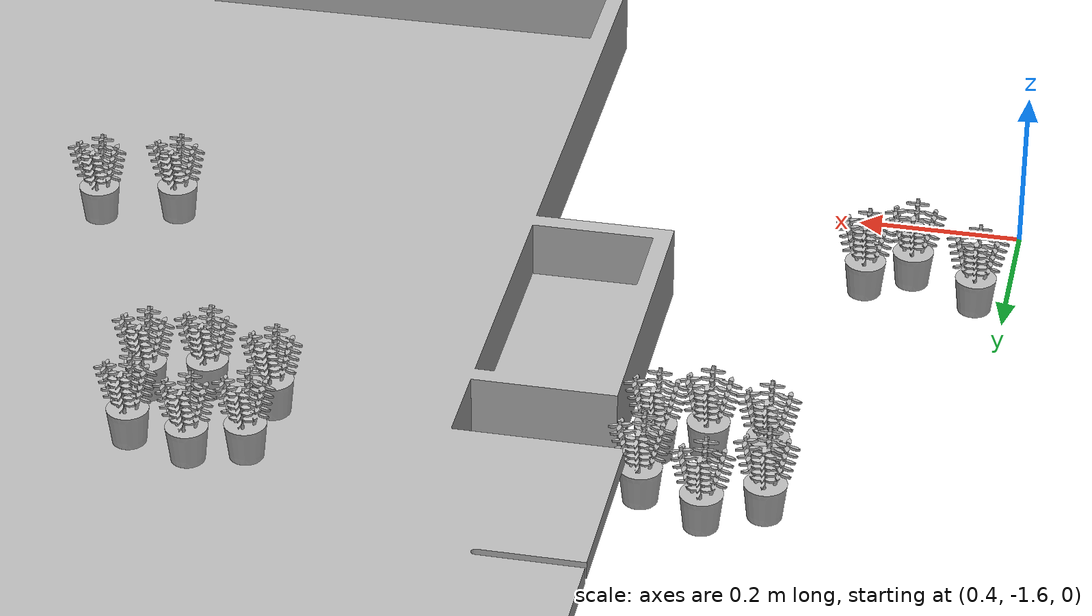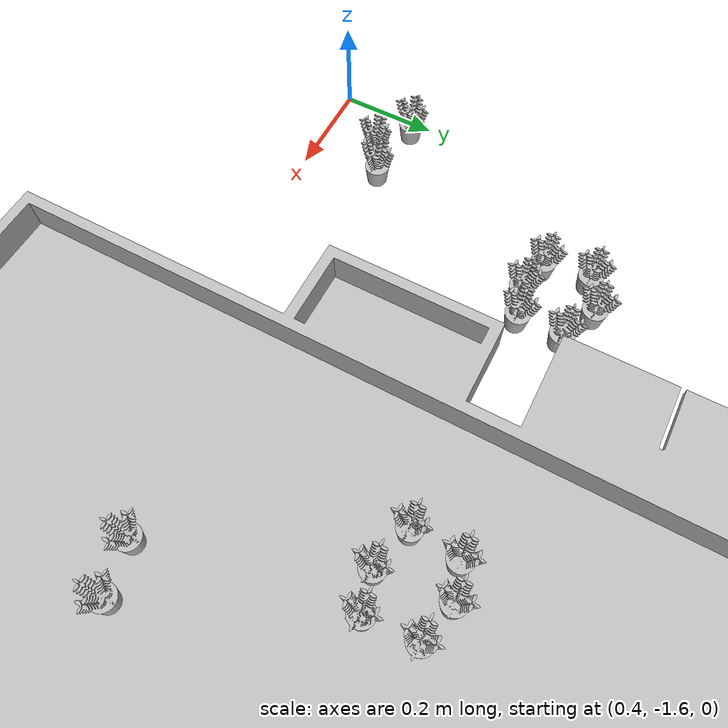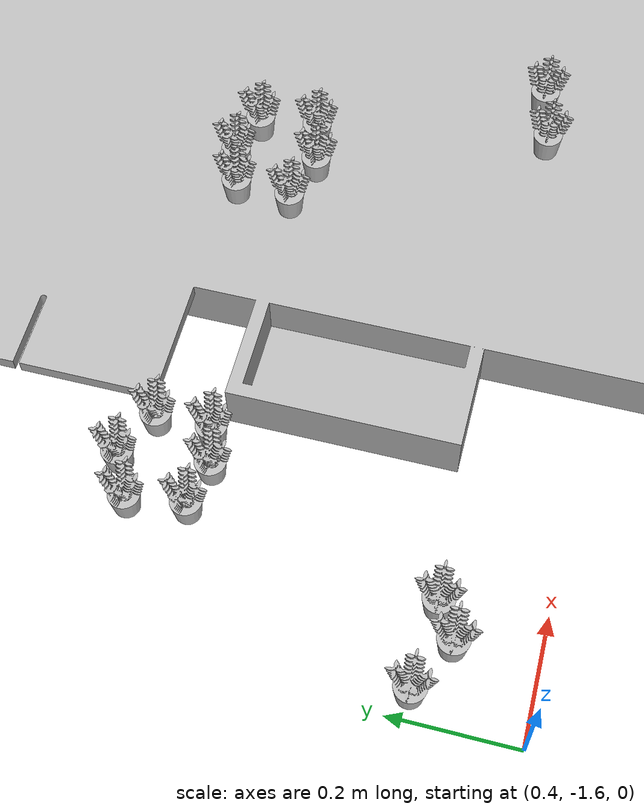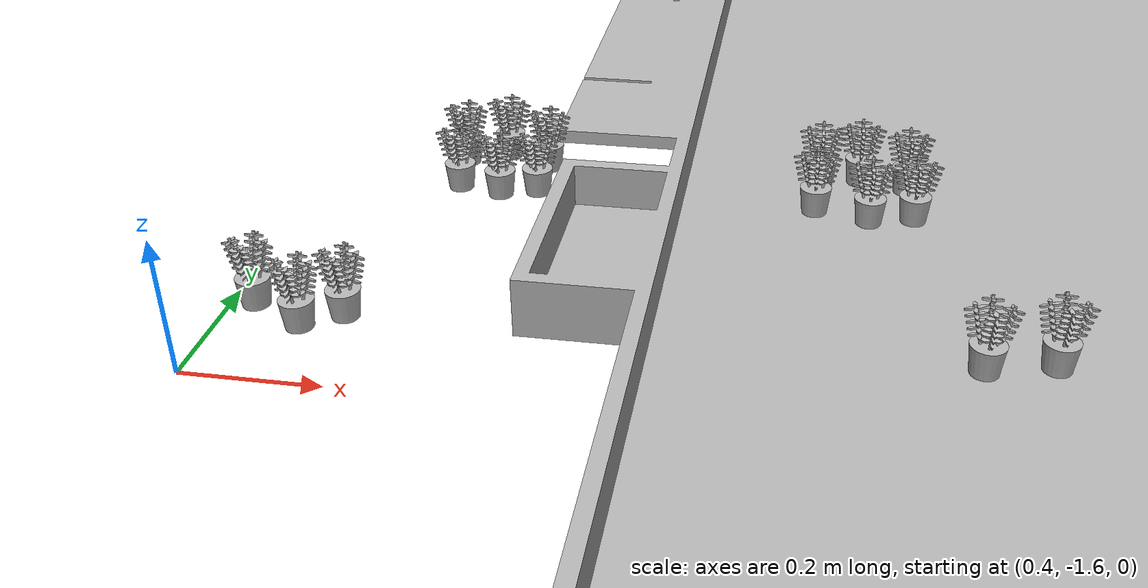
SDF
<sdf version="1.10">
 <world name="default">
  <model name="Table_2024">
   <static>true</static>
   <link name="link_0">
    <gravity>false</gravity>
    <inertial>
     <inertia>
      <ixx>0.16666700000000001</ixx>
      <ixy>0</ixy>
      <ixz>0</ixz>
      <iyy>0.16666700000000001</iyy>
      <iyz>0</iyz>
      <izz>0.16666700000000001</izz>
     </inertia>
     <mass>1</mass>
    </inertial>
    <visual name="visual">
     <geometry><mesh><uri>model://Table2024/table2024.dae</uri><scale>1 1 1</scale></mesh></geometry>
    </visual>
    <collision name="collision">
     <geometry><mesh><uri>model://Table2024/table2024.dae</uri><scale>1 1 1</scale></mesh></geometry>
     <surface>
      <friction>
       <ode><mu>1</mu><mu2>1</mu2><fdir1>0 0 0</fdir1><slip1>0</slip1><slip2>0</slip2></ode>
       <torsional>
        <coefficient>1</coefficient>
        <patch_radius>0</patch_radius>
        <surface_radius>0</surface_radius>
        <use_patch_radius>true</use_patch_radius>
        <ode><slip>0</slip></ode>
       </torsional>
      </friction>
      <contact>
       <collide_without_contact>false</collide_without_contact>
       <collide_without_contact_bitmask>1</collide_without_contact_bitmask>
       <collide_bitmask>1</collide_bitmask>
       <ode>
        <soft_cfm>0</soft_cfm>
        <soft_erp>0.20000000000000001</soft_erp>
        <kp>10000000000000</kp>
        <kd>1</kd>
        <max_vel>0.01</max_vel>
        <min_depth>0.001</min_depth>
       </ode>
       <bullet>
        <split_impulse>true</split_impulse>
        <split_impulse_penetration_threshold>-0.01</split_impulse_penetration_threshold>
        <soft_cfm>0</soft_cfm>
        <soft_erp>0.20000000000000001</soft_erp>
        <kp>10000000000000</kp>
        <kd>1</kd>
       </bullet>
      </contact>
     </surface>
    </collision>
   </link>
   <static>false</static>
   <pose>1 1 0 0 0 0</pose>
   <plugin filename="gz-sim-label-system" name="gz::sim::systems::Label"><label>9</label></plugin>
  </model>
  <model name="Plant_white">
   <static>false</static>
   <link name="link_0">
    <inertial>
     <pose>0 0 0.02 0 0 0</pose>
     <mass>0.025000000000000001</mass>
     <inertia>
      <ixx>2.5000000000000001e-05</ixx>
      <ixy>0</ixy>
      <ixz>0</ixz>
      <iyy>2.5000000000000001e-05</iyy>
      <iyz>0</iyz>
      <izz>7.9999999999999996e-06</izz>
     </inertia>
    </inertial>
    <visual name="visual">
     <geometry><mesh><uri>model://Plants/plant_white.dae</uri><scale>0.001 0.001 0.001</scale></mesh></geometry>
    </visual>
    <collision name="collision">
     <max_contacts>3</max_contacts>
     <pose>0 0 0.050000000000000003 0 0 0</pose>
     <geometry>
      <cylinder><radius>0.025000000000000001</radius><length>0.10000000000000001</length></cylinder>
     </geometry>
     <surface>
      <friction>
       <ode><mu>0.90000000000000002</mu><mu2>0.90000000000000002</mu2></ode>
       <torsional>
        <coefficient>1</coefficient>
        <patch_radius>0</patch_radius>
        <surface_radius>0</surface_radius>
        <use_patch_radius>true</use_patch_radius>
        <ode><slip>0</slip></ode>
       </torsional>
      </friction>
      <contact>
       <ode>
        <soft_cfm>0</soft_cfm>
        <soft_erp>0.20000000000000001</soft_erp>
        <kp>10</kp>
        <kd>1000000000</kd>
        <max_vel>0</max_vel>
        <min_depth>0.01</min_depth>
       </ode>
      </contact>
     </surface>
    </collision>
   </link>
   <pose>1.360179456462201 -0.9506477666523182 0 0 0 0</pose>
   <plugin filename="gz-sim-label-system" name="gz::sim::systems::Label"><label>6</label></plugin>
  </model>
  <model name="Plant_white_0">
   <static>false</static>
   <link name="link_0">
    <inertial>
     <pose>0 0 0.02 0 0 0</pose>
     <mass>0.025000000000000001</mass>
     <inertia>
      <ixx>2.5000000000000001e-05</ixx>
      <ixy>0</ixy>
      <ixz>0</ixz>
      <iyy>2.5000000000000001e-05</iyy>
      <iyz>0</iyz>
      <izz>7.9999999999999996e-06</izz>
     </inertia>
    </inertial>
    <visual name="visual">
     <geometry><mesh><uri>model://Plants/plant_white.dae</uri><scale>0.001 0.001 0.001</scale></mesh></geometry>
    </visual>
    <collision name="collision">
     <max_contacts>3</max_contacts>
     <pose>0 0 0.050000000000000003 0 0 0</pose>
     <geometry>
      <cylinder><radius>0.025000000000000001</radius><length>0.10000000000000001</length></cylinder>
     </geometry>
     <surface>
      <friction>
       <ode><mu>0.90000000000000002</mu><mu2>0.90000000000000002</mu2></ode>
       <torsional>
        <coefficient>1</coefficient>
        <patch_radius>0</patch_radius>
        <surface_radius>0</surface_radius>
        <use_patch_radius>true</use_patch_radius>
        <ode><slip>0</slip></ode>
       </torsional>
      </friction>
      <contact>
       <ode>
        <soft_cfm>0</soft_cfm>
        <soft_erp>0.20000000000000001</soft_erp>
        <kp>10</kp>
        <kd>1000000000</kd>
        <max_vel>0</max_vel>
        <min_depth>0.01</min_depth>
       </ode>
      </contact>
     </surface>
    </collision>
   </link>
   <pose>1.2836622102966466 -0.92864303198521259 0 0 0 0</pose>
   <plugin filename="gz-sim-label-system" name="gz::sim::systems::Label"><label>6</label></plugin>
  </model>
  <model name="Plant_white_1">
   <static>false</static>
   <link name="link_0">
    <inertial>
     <pose>0 0 0.02 0 0 0</pose>
     <mass>0.025000000000000001</mass>
     <inertia>
      <ixx>2.5000000000000001e-05</ixx>
      <ixy>0</ixy>
      <ixz>0</ixz>
      <iyy>2.5000000000000001e-05</iyy>
      <iyz>0</iyz>
      <izz>7.9999999999999996e-06</izz>
     </inertia>
    </inertial>
    <visual name="visual">
     <geometry><mesh><uri>model://Plants/plant_white.dae</uri><scale>0.001 0.001 0.001</scale></mesh></geometry>
    </visual>
    <collision name="collision">
     <max_contacts>3</max_contacts>
     <pose>0 0 0.050000000000000003 0 0 0</pose>
     <geometry>
      <cylinder><radius>0.025000000000000001</radius><length>0.10000000000000001</length></cylinder>
     </geometry>
     <surface>
      <friction>
       <ode><mu>0.90000000000000002</mu><mu2>0.90000000000000002</mu2></ode>
       <torsional>
        <coefficient>1</coefficient>
        <patch_radius>0</patch_radius>
        <surface_radius>0</surface_radius>
        <use_patch_radius>true</use_patch_radius>
        <ode><slip>0</slip></ode>
       </torsional>
      </friction>
      <contact>
       <ode>
        <soft_cfm>0</soft_cfm>
        <soft_erp>0.20000000000000001</soft_erp>
        <kp>10</kp>
        <kd>1000000000</kd>
        <max_vel>0</max_vel>
        <min_depth>0.01</min_depth>
       </ode>
      </contact>
     </surface>
    </collision>
   </link>
   <pose>1.2193133264073377 -0.9479548182897416 0 0 0 0</pose>
   <plugin filename="gz-sim-label-system" name="gz::sim::systems::Label"><label>6</label></plugin>
  </model>
  <model name="Plant_white_2">
   <static>false</static>
   <link name="link_0">
    <inertial>
     <pose>0 0 0.02 0 0 0</pose>
     <mass>0.025000000000000001</mass>
     <inertia>
      <ixx>2.5000000000000001e-05</ixx>
      <ixy>0</ixy>
      <ixz>0</ixz>
      <iyy>2.5000000000000001e-05</iyy>
      <iyz>0</iyz>
      <izz>7.9999999999999996e-06</izz>
     </inertia>
    </inertial>
    <visual name="visual">
     <geometry><mesh><uri>model://Plants/plant_white.dae</uri><scale>0.001 0.001 0.001</scale></mesh></geometry>
    </visual>
    <collision name="collision">
     <max_contacts>3</max_contacts>
     <pose>0 0 0.050000000000000003 0 0 0</pose>
     <geometry>
      <cylinder><radius>0.025000000000000001</radius><length>0.10000000000000001</length></cylinder>
     </geometry>
     <surface>
      <friction>
       <ode><mu>0.90000000000000002</mu><mu2>0.90000000000000002</mu2></ode>
       <torsional>
        <coefficient>1</coefficient>
        <patch_radius>0</patch_radius>
        <surface_radius>0</surface_radius>
        <use_patch_radius>true</use_patch_radius>
        <ode><slip>0</slip></ode>
       </torsional>
      </friction>
      <contact>
       <ode>
        <soft_cfm>0</soft_cfm>
        <soft_erp>0.20000000000000001</soft_erp>
        <kp>10</kp>
        <kd>1000000000</kd>
        <max_vel>0</max_vel>
        <min_depth>0.01</min_depth>
       </ode>
      </contact>
     </surface>
    </collision>
   </link>
   <pose>1.3677955824821897 -1.0497429587157769 0 0 0 0</pose>
   <plugin filename="gz-sim-label-system" name="gz::sim::systems::Label"><label>6</label></plugin>
  </model>
  <model name="Plant_white_3">
   <static>false</static>
   <link name="link_0">
    <inertial>
     <pose>0 0 0.02 0 0 0</pose>
     <mass>0.025000000000000001</mass>
     <inertia>
      <ixx>2.5000000000000001e-05</ixx>
      <ixy>0</ixy>
      <ixz>0</ixz>
      <iyy>2.5000000000000001e-05</iyy>
      <iyz>0</iyz>
      <izz>7.9999999999999996e-06</izz>
     </inertia>
    </inertial>
    <visual name="visual">
     <geometry><mesh><uri>model://Plants/plant_white.dae</uri><scale>0.001 0.001 0.001</scale></mesh></geometry>
    </visual>
    <collision name="collision">
     <max_contacts>3</max_contacts>
     <pose>0 0 0.050000000000000003 0 0 0</pose>
     <geometry>
      <cylinder><radius>0.025000000000000001</radius><length>0.10000000000000001</length></cylinder>
     </geometry>
     <surface>
      <friction>
       <ode><mu>0.90000000000000002</mu><mu2>0.90000000000000002</mu2></ode>
       <torsional>
        <coefficient>1</coefficient>
        <patch_radius>0</patch_radius>
        <surface_radius>0</surface_radius>
        <use_patch_radius>true</use_patch_radius>
        <ode><slip>0</slip></ode>
       </torsional>
      </friction>
      <contact>
       <ode>
        <soft_cfm>0</soft_cfm>
        <soft_erp>0.20000000000000001</soft_erp>
        <kp>10</kp>
        <kd>1000000000</kd>
        <max_vel>0</max_vel>
        <min_depth>0.01</min_depth>
       </ode>
      </contact>
     </surface>
    </collision>
   </link>
   <pose>1.2975663575258229 -1.0668057484984725 0 0 0 0</pose>
   <plugin filename="gz-sim-label-system" name="gz::sim::systems::Label"><label>6</label></plugin>
  </model>
  <model name="Plant_white_4">
   <static>false</static>
   <link name="link_0">
    <inertial>
     <pose>0 0 0.02 0 0 0</pose>
     <mass>0.025000000000000001</mass>
     <inertia>
      <ixx>2.5000000000000001e-05</ixx>
      <ixy>0</ixy>
      <ixz>0</ixz>
      <iyy>2.5000000000000001e-05</iyy>
      <iyz>0</iyz>
      <izz>7.9999999999999996e-06</izz>
     </inertia>
    </inertial>
    <visual name="visual">
     <geometry><mesh><uri>model://Plants/plant_white.dae</uri><scale>0.001 0.001 0.001</scale></mesh></geometry>
    </visual>
    <collision name="collision">
     <max_contacts>3</max_contacts>
     <pose>0 0 0.050000000000000003 0 0 0</pose>
     <geometry>
      <cylinder><radius>0.025000000000000001</radius><length>0.10000000000000001</length></cylinder>
     </geometry>
     <surface>
      <friction>
       <ode><mu>0.90000000000000002</mu><mu2>0.90000000000000002</mu2></ode>
       <torsional>
        <coefficient>1</coefficient>
        <patch_radius>0</patch_radius>
        <surface_radius>0</surface_radius>
        <use_patch_radius>true</use_patch_radius>
        <ode><slip>0</slip></ode>
       </torsional>
      </friction>
      <contact>
       <ode>
        <soft_cfm>0</soft_cfm>
        <soft_erp>0.20000000000000001</soft_erp>
        <kp>10</kp>
        <kd>1000000000</kd>
        <max_vel>0</max_vel>
        <min_depth>0.01</min_depth>
       </ode>
      </contact>
     </surface>
    </collision>
   </link>
   <pose>1.21215457357818 -1.0426224273530589 0 0 0 0</pose>
   <plugin filename="gz-sim-label-system" name="gz::sim::systems::Label"><label>6</label></plugin>
  </model>
  <model name="Plant_white_5">
   <static>false</static>
   <link name="link_0">
    <inertial>
     <pose>0 0 0.02 0 0 0</pose>
     <mass>0.025000000000000001</mass>
     <inertia>
      <ixx>2.5000000000000001e-05</ixx>
      <ixy>0</ixy>
      <ixz>0</ixz>
      <iyy>2.5000000000000001e-05</iyy>
      <iyz>0</iyz>
      <izz>7.9999999999999996e-06</izz>
     </inertia>
    </inertial>
    <visual name="visual">
     <geometry><mesh><uri>model://Plants/plant_white.dae</uri><scale>0.001 0.001 0.001</scale></mesh></geometry>
    </visual>
    <collision name="collision">
     <max_contacts>3</max_contacts>
     <pose>0 0 0.050000000000000003 0 0 0</pose>
     <geometry>
      <cylinder><radius>0.025000000000000001</radius><length>0.10000000000000001</length></cylinder>
     </geometry>
     <surface>
      <friction>
       <ode><mu>0.90000000000000002</mu><mu2>0.90000000000000002</mu2></ode>
       <torsional>
        <coefficient>1</coefficient>
        <patch_radius>0</patch_radius>
        <surface_radius>0</surface_radius>
        <use_patch_radius>true</use_patch_radius>
        <ode><slip>0</slip></ode>
       </torsional>
      </friction>
      <contact>
       <ode>
        <soft_cfm>0</soft_cfm>
        <soft_erp>0.20000000000000001</soft_erp>
        <kp>10</kp>
        <kd>1000000000</kd>
        <max_vel>0</max_vel>
        <min_depth>0.01</min_depth>
       </ode>
      </contact>
     </surface>
    </collision>
   </link>
   <pose>0.76038765305396971 -0.95397081075234624 0 0 0 0</pose>
   <plugin filename="gz-sim-label-system" name="gz::sim::systems::Label"><label>6</label></plugin>
  </model>
  <model name="Plant_white_6">
   <static>false</static>
   <link name="link_0">
    <inertial>
     <pose>0 0 0.02 0 0 0</pose>
     <mass>0.025000000000000001</mass>
     <inertia>
      <ixx>2.5000000000000001e-05</ixx>
      <ixy>0</ixy>
      <ixz>0</ixz>
      <iyy>2.5000000000000001e-05</iyy>
      <iyz>0</iyz>
      <izz>7.9999999999999996e-06</izz>
     </inertia>
    </inertial>
    <visual name="visual">
     <geometry><mesh><uri>model://Plants/plant_white.dae</uri><scale>0.001 0.001 0.001</scale></mesh></geometry>
    </visual>
    <collision name="collision">
     <max_contacts>3</max_contacts>
     <pose>0 0 0.050000000000000003 0 0 0</pose>
     <geometry>
      <cylinder><radius>0.025000000000000001</radius><length>0.10000000000000001</length></cylinder>
     </geometry>
     <surface>
      <friction>
       <ode><mu>0.90000000000000002</mu><mu2>0.90000000000000002</mu2></ode>
       <torsional>
        <coefficient>1</coefficient>
        <patch_radius>0</patch_radius>
        <surface_radius>0</surface_radius>
        <use_patch_radius>true</use_patch_radius>
        <ode><slip>0</slip></ode>
       </torsional>
      </friction>
      <contact>
       <ode>
        <soft_cfm>0</soft_cfm>
        <soft_erp>0.20000000000000001</soft_erp>
        <kp>10</kp>
        <kd>1000000000</kd>
        <max_vel>0</max_vel>
        <min_depth>0.01</min_depth>
       </ode>
      </contact>
     </surface>
    </collision>
   </link>
   <pose>0.68443245151425547 -0.9175018419367601 0 0 0 0</pose>
   <plugin filename="gz-sim-label-system" name="gz::sim::systems::Label"><label>6</label></plugin>
  </model>
  <model name="Plant_white_7">
   <static>false</static>
   <link name="link_0">
    <inertial>
     <pose>0 0 0.02 0 0 0</pose>
     <mass>0.025000000000000001</mass>
     <inertia>
      <ixx>2.5000000000000001e-05</ixx>
      <ixy>0</ixy>
      <ixz>0</ixz>
      <iyy>2.5000000000000001e-05</iyy>
      <iyz>0</iyz>
      <izz>7.9999999999999996e-06</izz>
     </inertia>
    </inertial>
    <visual name="visual">
     <geometry><mesh><uri>model://Plants/plant_white.dae</uri><scale>0.001 0.001 0.001</scale></mesh></geometry>
    </visual>
    <collision name="collision">
     <max_contacts>3</max_contacts>
     <pose>0 0 0.050000000000000003 0 0 0</pose>
     <geometry>
      <cylinder><radius>0.025000000000000001</radius><length>0.10000000000000001</length></cylinder>
     </geometry>
     <surface>
      <friction>
       <ode><mu>0.90000000000000002</mu><mu2>0.90000000000000002</mu2></ode>
       <torsional>
        <coefficient>1</coefficient>
        <patch_radius>0</patch_radius>
        <surface_radius>0</surface_radius>
        <use_patch_radius>true</use_patch_radius>
        <ode><slip>0</slip></ode>
       </torsional>
      </friction>
      <contact>
       <ode>
        <soft_cfm>0</soft_cfm>
        <soft_erp>0.20000000000000001</soft_erp>
        <kp>10</kp>
        <kd>1000000000</kd>
        <max_vel>0</max_vel>
        <min_depth>0.01</min_depth>
       </ode>
      </contact>
     </surface>
    </collision>
   </link>
   <pose>0.61749618409635343 -0.95085208252025 0 0 0 0</pose>
   <plugin filename="gz-sim-label-system" name="gz::sim::systems::Label"><label>6</label></plugin>
  </model>
  <model name="Plant_white_8">
   <static>false</static>
   <link name="link_0">
    <inertial>
     <pose>0 0 0.02 0 0 0</pose>
     <mass>0.025000000000000001</mass>
     <inertia>
      <ixx>2.5000000000000001e-05</ixx>
      <ixy>0</ixy>
      <ixz>0</ixz>
      <iyy>2.5000000000000001e-05</iyy>
      <iyz>0</iyz>
      <izz>7.9999999999999996e-06</izz>
     </inertia>
    </inertial>
    <visual name="visual">
     <geometry><mesh><uri>model://Plants/plant_white.dae</uri><scale>0.001 0.001 0.001</scale></mesh></geometry>
    </visual>
    <collision name="collision">
     <max_contacts>3</max_contacts>
     <pose>0 0 0.050000000000000003 0 0 0</pose>
     <geometry>
      <cylinder><radius>0.025000000000000001</radius><length>0.10000000000000001</length></cylinder>
     </geometry>
     <surface>
      <friction>
       <ode><mu>0.90000000000000002</mu><mu2>0.90000000000000002</mu2></ode>
       <torsional>
        <coefficient>1</coefficient>
        <patch_radius>0</patch_radius>
        <surface_radius>0</surface_radius>
        <use_patch_radius>true</use_patch_radius>
        <ode><slip>0</slip></ode>
       </torsional>
      </friction>
      <contact>
       <ode>
        <soft_cfm>0</soft_cfm>
        <soft_erp>0.20000000000000001</soft_erp>
        <kp>10</kp>
        <kd>1000000000</kd>
        <max_vel>0</max_vel>
        <min_depth>0.01</min_depth>
       </ode>
      </contact>
     </surface>
    </collision>
   </link>
   <pose>0.75956750021734631 -1.0432499367316035 0 0 0 0</pose>
   <plugin filename="gz-sim-label-system" name="gz::sim::systems::Label"><label>6</label></plugin>
  </model>
  <model name="Plant_white_9">
   <static>false</static>
   <link name="link_0">
    <inertial>
     <pose>0 0 0.02 0 0 0</pose>
     <mass>0.025000000000000001</mass>
     <inertia>
      <ixx>2.5000000000000001e-05</ixx>
      <ixy>0</ixy>
      <ixz>0</ixz>
      <iyy>2.5000000000000001e-05</iyy>
      <iyz>0</iyz>
      <izz>7.9999999999999996e-06</izz>
     </inertia>
    </inertial>
    <visual name="visual">
     <geometry><mesh><uri>model://Plants/plant_white.dae</uri><scale>0.001 0.001 0.001</scale></mesh></geometry>
    </visual>
    <collision name="collision">
     <max_contacts>3</max_contacts>
     <pose>0 0 0.050000000000000003 0 0 0</pose>
     <geometry>
      <cylinder><radius>0.025000000000000001</radius><length>0.10000000000000001</length></cylinder>
     </geometry>
     <surface>
      <friction>
       <ode><mu>0.90000000000000002</mu><mu2>0.90000000000000002</mu2></ode>
       <torsional>
        <coefficient>1</coefficient>
        <patch_radius>0</patch_radius>
        <surface_radius>0</surface_radius>
        <use_patch_radius>true</use_patch_radius>
        <ode><slip>0</slip></ode>
       </torsional>
      </friction>
      <contact>
       <ode>
        <soft_cfm>0</soft_cfm>
        <soft_erp>0.20000000000000001</soft_erp>
        <kp>10</kp>
        <kd>1000000000</kd>
        <max_vel>0</max_vel>
        <min_depth>0.01</min_depth>
       </ode>
      </contact>
     </surface>
    </collision>
   </link>
   <pose>0.70076040059850042 -1.0596673415247944 0 0 0 0</pose>
   <plugin filename="gz-sim-label-system" name="gz::sim::systems::Label"><label>6</label></plugin>
  </model>
  <model name="Plant_white_10">
   <static>false</static>
   <link name="link_0">
    <inertial>
     <pose>0 0 0.02 0 0 0</pose>
     <mass>0.025000000000000001</mass>
     <inertia>
      <ixx>2.5000000000000001e-05</ixx>
      <ixy>0</ixy>
      <ixz>0</ixz>
      <iyy>2.5000000000000001e-05</iyy>
      <iyz>0</iyz>
      <izz>7.9999999999999996e-06</izz>
     </inertia>
    </inertial>
    <visual name="visual">
     <geometry><mesh><uri>model://Plants/plant_white.dae</uri><scale>0.001 0.001 0.001</scale></mesh></geometry>
    </visual>
    <collision name="collision">
     <max_contacts>3</max_contacts>
     <pose>0 0 0.050000000000000003 0 0 0</pose>
     <geometry>
      <cylinder><radius>0.025000000000000001</radius><length>0.10000000000000001</length></cylinder>
     </geometry>
     <surface>
      <friction>
       <ode><mu>0.90000000000000002</mu><mu2>0.90000000000000002</mu2></ode>
       <torsional>
        <coefficient>1</coefficient>
        <patch_radius>0</patch_radius>
        <surface_radius>0</surface_radius>
        <use_patch_radius>true</use_patch_radius>
        <ode><slip>0</slip></ode>
       </torsional>
      </friction>
      <contact>
       <ode>
        <soft_cfm>0</soft_cfm>
        <soft_erp>0.20000000000000001</soft_erp>
        <kp>10</kp>
        <kd>1000000000</kd>
        <max_vel>0</max_vel>
        <min_depth>0.01</min_depth>
       </ode>
      </contact>
     </surface>
    </collision>
   </link>
   <pose>0.6296561178344251 -1.0434657839648602 0 0 0 0</pose>
   <plugin filename="gz-sim-label-system" name="gz::sim::systems::Label"><label>6</label></plugin>
  </model>
  <model name="Plant_white_12">
   <static>false</static>
   <link name="link_0">
    <inertial>
     <pose>0 0 0.02 0 0 0</pose>
     <mass>0.025000000000000001</mass>
     <inertia>
      <ixx>2.5000000000000001e-05</ixx>
      <ixy>0</ixy>
      <ixz>0</ixz>
      <iyy>2.5000000000000001e-05</iyy>
      <iyz>0</iyz>
      <izz>7.9999999999999996e-06</izz>
     </inertia>
    </inertial>
    <visual name="visual">
     <geometry><mesh><uri>model://Plants/plant_white.dae</uri><scale>0.001 0.001 0.001</scale></mesh></geometry>
    </visual>
    <collision name="collision">
     <max_contacts>3</max_contacts>
     <pose>0 0 0.050000000000000003 0 0 0</pose>
     <geometry>
      <cylinder><radius>0.025000000000000001</radius><length>0.10000000000000001</length></cylinder>
     </geometry>
     <surface>
      <friction>
       <ode><mu>0.90000000000000002</mu><mu2>0.90000000000000002</mu2></ode>
       <torsional>
        <coefficient>1</coefficient>
        <patch_radius>0</patch_radius>
        <surface_radius>0</surface_radius>
        <use_patch_radius>true</use_patch_radius>
        <ode><slip>0</slip></ode>
       </torsional>
      </friction>
      <contact>
       <ode>
        <soft_cfm>0</soft_cfm>
        <soft_erp>0.20000000000000001</soft_erp>
        <kp>10</kp>
        <kd>1000000000</kd>
        <max_vel>0</max_vel>
        <min_depth>0.01</min_depth>
       </ode>
      </contact>
     </surface>
    </collision>
   </link>
   <pose>0.57278452585802619 -1.4400593749685044 0 0 0 0</pose>
   <plugin filename="gz-sim-label-system" name="gz::sim::systems::Label"><label>6</label></plugin>
  </model>
  <model name="Plant_white_13">
   <static>false</static>
   <link name="link_0">
    <inertial>
     <pose>0 0 0.02 0 0 0</pose>
     <mass>0.025000000000000001</mass>
     <inertia>
      <ixx>2.5000000000000001e-05</ixx>
      <ixy>0</ixy>
      <ixz>0</ixz>
      <iyy>2.5000000000000001e-05</iyy>
      <iyz>0</iyz>
      <izz>7.9999999999999996e-06</izz>
     </inertia>
    </inertial>
    <visual name="visual">
     <geometry><mesh><uri>model://Plants/plant_white.dae</uri><scale>0.001 0.001 0.001</scale></mesh></geometry>
    </visual>
    <collision name="collision">
     <max_contacts>3</max_contacts>
     <pose>0 0 0.050000000000000003 0 0 0</pose>
     <geometry>
      <cylinder><radius>0.025000000000000001</radius><length>0.10000000000000001</length></cylinder>
     </geometry>
     <surface>
      <friction>
       <ode><mu>0.90000000000000002</mu><mu2>0.90000000000000002</mu2></ode>
       <torsional>
        <coefficient>1</coefficient>
        <patch_radius>0</patch_radius>
        <surface_radius>0</surface_radius>
        <use_patch_radius>true</use_patch_radius>
        <ode><slip>0</slip></ode>
       </torsional>
      </friction>
      <contact>
       <ode>
        <soft_cfm>0</soft_cfm>
        <soft_erp>0.20000000000000001</soft_erp>
        <kp>10</kp>
        <kd>1000000000</kd>
        <max_vel>0</max_vel>
        <min_depth>0.01</min_depth>
       </ode>
      </contact>
     </surface>
    </collision>
   </link>
   <pose>0.5186509068527978 -1.4733918568546436 0 0 0 0</pose>
   <plugin filename="gz-sim-label-system" name="gz::sim::systems::Label"><label>6</label></plugin>
  </model>
  <model name="Plant_white_16">
   <static>false</static>
   <link name="link_0">
    <inertial>
     <pose>0 0 0.02 0 0 0</pose>
     <mass>0.025000000000000001</mass>
     <inertia>
      <ixx>2.5000000000000001e-05</ixx>
      <ixy>0</ixy>
      <ixz>0</ixz>
      <iyy>2.5000000000000001e-05</iyy>
      <iyz>0</iyz>
      <izz>7.9999999999999996e-06</izz>
     </inertia>
    </inertial>
    <visual name="visual">
     <geometry><mesh><uri>model://Plants/plant_white.dae</uri><scale>0.001 0.001 0.001</scale></mesh></geometry>
    </visual>
    <collision name="collision">
     <max_contacts>3</max_contacts>
     <pose>0 0 0.050000000000000003 0 0 0</pose>
     <geometry>
      <cylinder><radius>0.025000000000000001</radius><length>0.10000000000000001</length></cylinder>
     </geometry>
     <surface>
      <friction>
       <ode><mu>0.90000000000000002</mu><mu2>0.90000000000000002</mu2></ode>
       <torsional>
        <coefficient>1</coefficient>
        <patch_radius>0</patch_radius>
        <surface_radius>0</surface_radius>
        <use_patch_radius>true</use_patch_radius>
        <ode><slip>0</slip></ode>
       </torsional>
      </friction>
      <contact>
       <ode>
        <soft_cfm>0</soft_cfm>
        <soft_erp>0.20000000000000001</soft_erp>
        <kp>10</kp>
        <kd>1000000000</kd>
        <max_vel>0</max_vel>
        <min_depth>0.01</min_depth>
       </ode>
      </contact>
     </surface>
    </collision>
   </link>
   <pose>0.43696358106290828 -1.4291666901252948 0 0 0 0</pose>
   <plugin filename="gz-sim-label-system" name="gz::sim::systems::Label"><label>6</label></plugin>
  </model>
  <model name="Plant_white_31">
   <static>false</static>
   <link name="link_0">
    <inertial>
     <pose>0 0 0.02 0 0 0</pose>
     <mass>0.025000000000000001</mass>
     <inertia>
      <ixx>2.5000000000000001e-05</ixx>
      <ixy>0</ixy>
      <ixz>0</ixz>
      <iyy>2.5000000000000001e-05</iyy>
      <iyz>0</iyz>
      <izz>7.9999999999999996e-06</izz>
     </inertia>
    </inertial>
    <visual name="visual">
     <geometry><mesh><uri>model://Plants/plant_white.dae</uri><scale>0.001 0.001 0.001</scale></mesh></geometry>
    </visual>
    <collision name="collision">
     <max_contacts>3</max_contacts>
     <pose>0 0 0.050000000000000003 0 0 0</pose>
     <geometry>
      <cylinder><radius>0.025000000000000001</radius><length>0.10000000000000001</length></cylinder>
     </geometry>
     <surface>
      <friction>
       <ode><mu>0.90000000000000002</mu><mu2>0.90000000000000002</mu2></ode>
       <torsional>
        <coefficient>1</coefficient>
        <patch_radius>0</patch_radius>
        <surface_radius>0</surface_radius>
        <use_patch_radius>true</use_patch_radius>
        <ode><slip>0</slip></ode>
       </torsional>
      </friction>
      <contact>
       <ode>
        <soft_cfm>0</soft_cfm>
        <soft_erp>0.20000000000000001</soft_erp>
        <kp>10</kp>
        <kd>1000000000</kd>
        <max_vel>0</max_vel>
        <min_depth>0.01</min_depth>
       </ode>
      </contact>
     </surface>
    </collision>
   </link>
   <pose>1.5369922074000306 -1.4210961049132194 0 0 0 0</pose>
   <plugin filename="gz-sim-label-system" name="gz::sim::systems::Label"><label>6</label></plugin>
  </model>
  <model name="Plant_white_32">
   <static>false</static>
   <link name="link_0">
    <inertial>
     <pose>0 0 0.02 0 0 0</pose>
     <mass>0.025000000000000001</mass>
     <inertia>
      <ixx>2.5000000000000001e-05</ixx>
      <ixy>0</ixy>
      <ixz>0</ixz>
      <iyy>2.5000000000000001e-05</iyy>
      <iyz>0</iyz>
      <izz>7.9999999999999996e-06</izz>
     </inertia>
    </inertial>
    <visual name="visual">
     <geometry><mesh><uri>model://Plants/plant_white.dae</uri><scale>0.001 0.001 0.001</scale></mesh></geometry>
    </visual>
    <collision name="collision">
     <max_contacts>3</max_contacts>
     <pose>0 0 0.050000000000000003 0 0 0</pose>
     <geometry>
      <cylinder><radius>0.025000000000000001</radius><length>0.10000000000000001</length></cylinder>
     </geometry>
     <surface>
      <friction>
       <ode><mu>0.90000000000000002</mu><mu2>0.90000000000000002</mu2></ode>
       <torsional>
        <coefficient>1</coefficient>
        <patch_radius>0</patch_radius>
        <surface_radius>0</surface_radius>
        <use_patch_radius>true</use_patch_radius>
        <ode><slip>0</slip></ode>
       </torsional>
      </friction>
      <contact>
       <ode>
        <soft_cfm>0</soft_cfm>
        <soft_erp>0.20000000000000001</soft_erp>
        <kp>10</kp>
        <kd>1000000000</kd>
        <max_vel>0</max_vel>
        <min_depth>0.01</min_depth>
       </ode>
      </contact>
     </surface>
    </collision>
   </link>
   <pose>1.4417177073235194 -1.442449284868158 0 0 0 0</pose>
   <plugin filename="gz-sim-label-system" name="gz::sim::systems::Label"><label>6</label></plugin>
  </model>
 </world>
</sdf>
